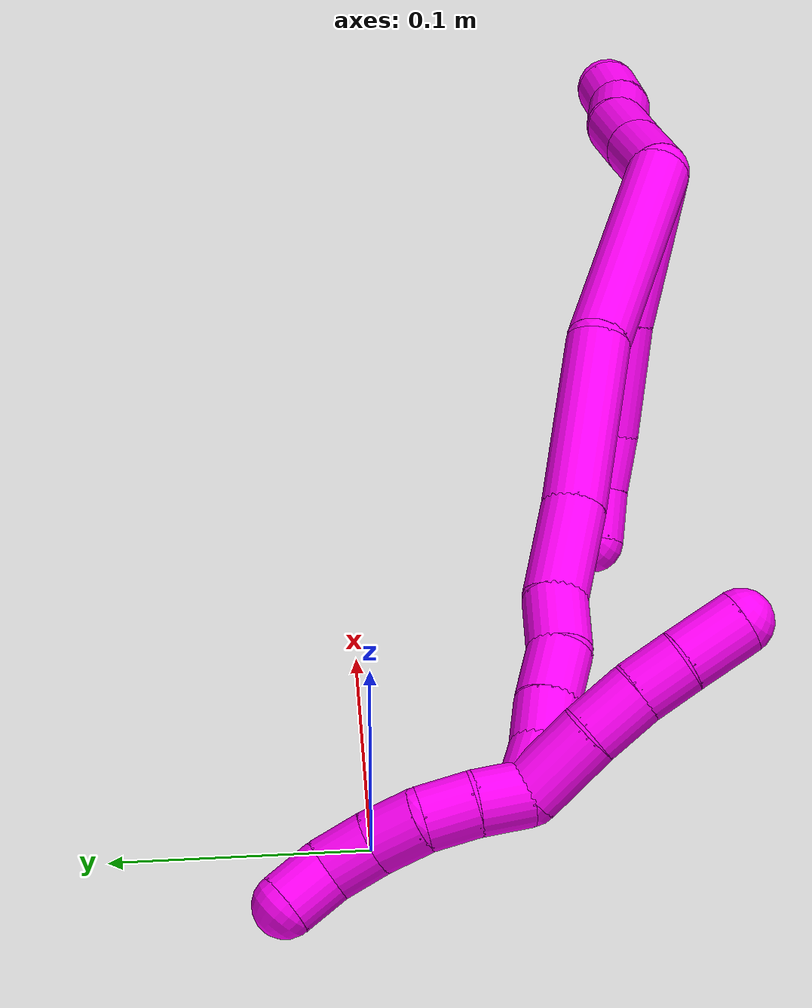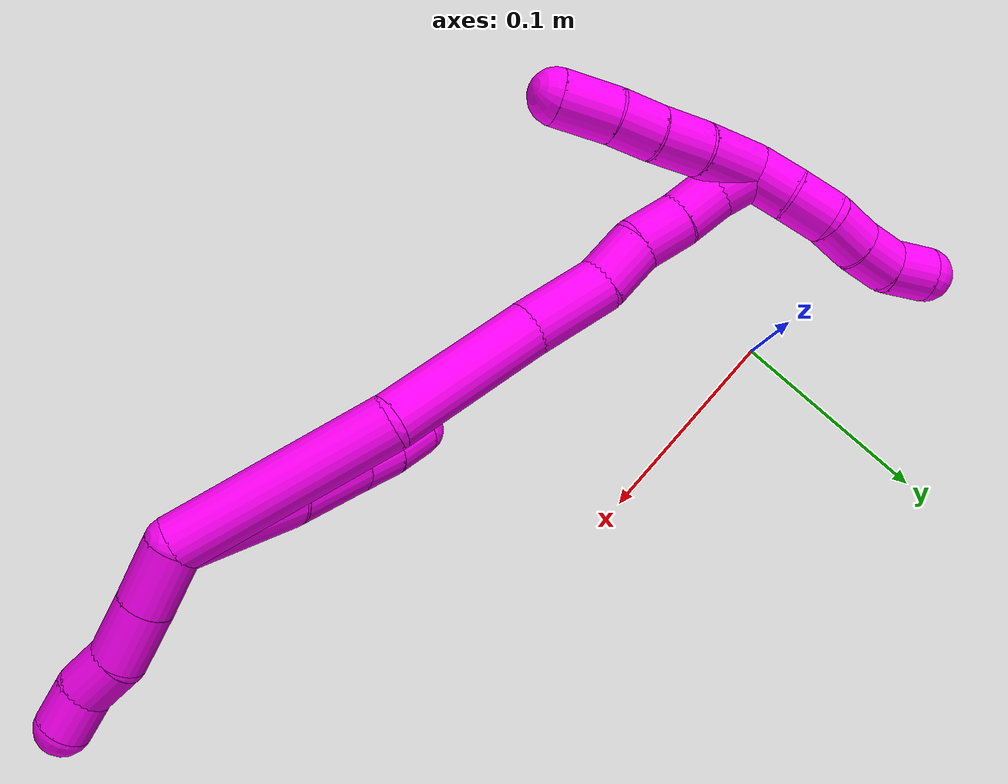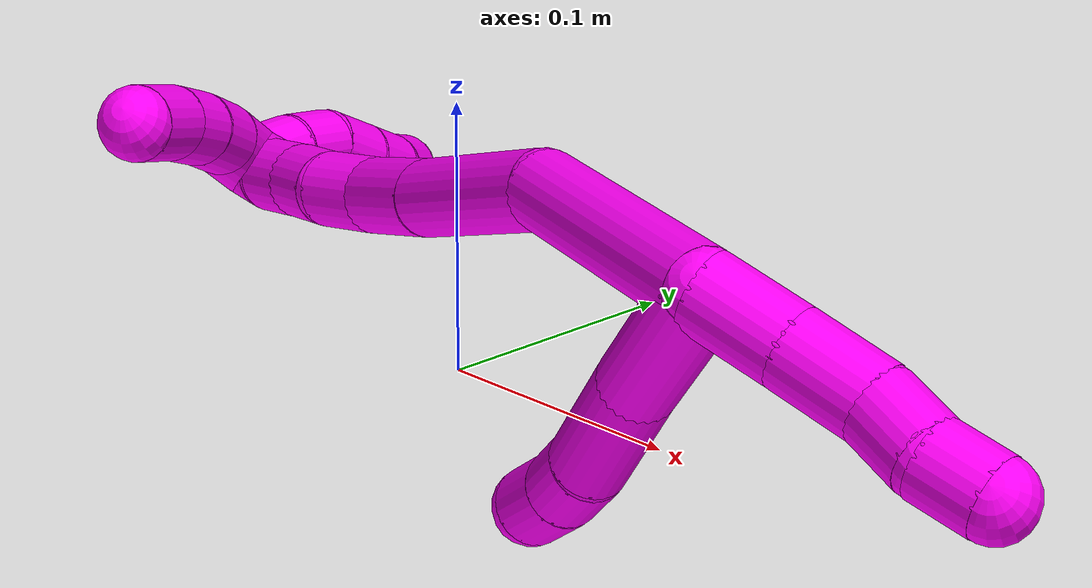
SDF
<sdf version="1.7">
 <world name="default">
  <model name="10">
   <static>0</static>
   <link name="10">
    <collision name="collision-cylinder-e_1_2_8">
     <pose>-0.010807 -0.010224 -0.026932 2.77879 -0.358895 -1.55974</pose>
     <geometry><cylinder><radius>0.0125</radius><length>0.061535</length></cylinder></geometry>
     <surface>
      <friction><ode><mu>1.16</mu><mu2>1.16</mu2><slip1>0</slip1><slip2>0</slip2></ode></friction>
      <contact><ode><kp>1e+06</kp><kd>1</kd><max_vel>0</max_vel><min_depth>0.001</min_depth></ode></contact>
     </surface>
    </collision>
    <visual name="visual-cylinder-e_1_2_8">
     <pose>-0.010807 -0.010224 -0.026932 2.77879 -0.358895 -1.55974</pose>
     <geometry><cylinder><radius>0.0125</radius><length>0.061535</length></cylinder></geometry>
     <material><ambient>1 0 0.964706 1</ambient></material>
    </visual>
    <collision name="collision-cylinder-e_2_8_9">
     <pose>-0.028747 -0.03082 -0.072453 2.63263 -0.323325 -1.12001</pose>
     <geometry><cylinder><radius>0.0125</radius><length>0.044901</length></cylinder></geometry>
     <surface>
      <friction><ode><mu>1.16</mu><mu2>1.16</mu2><slip1>0</slip1><slip2>0</slip2></ode></friction>
      <contact><ode><kp>1e+06</kp><kd>1</kd><max_vel>0</max_vel><min_depth>0.001</min_depth></ode></contact>
     </surface>
    </collision>
    <visual name="visual-cylinder-e_2_8_9">
     <pose>-0.028747 -0.03082 -0.072453 2.63263 -0.323325 -1.12001</pose>
     <geometry><cylinder><radius>0.0125</radius><length>0.044901</length></cylinder></geometry>
     <material><ambient>1 0 0.964706 1</ambient></material>
    </visual>
    <collision name="collision-cylinder-e_3_9_10">
     <pose>-0.040644 -0.044956 -0.100501 2.76289 -0.437733 -1.7192</pose>
     <geometry><cylinder><radius>0.0125</radius><length>0.022481</length></cylinder></geometry>
     <surface>
      <friction><ode><mu>1.16</mu><mu2>1.16</mu2><slip1>0</slip1><slip2>0</slip2></ode></friction>
      <contact><ode><kp>1e+06</kp><kd>1</kd><max_vel>0</max_vel><min_depth>0.001</min_depth></ode></contact>
     </surface>
    </collision>
    <visual name="visual-cylinder-e_3_9_10">
     <pose>-0.040644 -0.044956 -0.100501 2.76289 -0.437733 -1.7192</pose>
     <geometry><cylinder><radius>0.0125</radius><length>0.022481</length></cylinder></geometry>
     <material><ambient>1 0 0.964706 1</ambient></material>
    </visual>
    <collision name="collision-cylinder-e_4_10_6">
     <pose>-0.051292 -0.052109 -0.118025 2.74383 -0.592049 -1.97368</pose>
     <geometry><cylinder><radius>0.0125</radius><length>0.021083</length></cylinder></geometry>
     <surface>
      <friction><ode><mu>1.16</mu><mu2>1.16</mu2><slip1>0</slip1><slip2>0</slip2></ode></friction>
      <contact><ode><kp>1e+06</kp><kd>1</kd><max_vel>0</max_vel><min_depth>0.001</min_depth></ode></contact>
     </surface>
    </collision>
    <visual name="visual-cylinder-e_4_10_6">
     <pose>-0.051292 -0.052109 -0.118025 2.74383 -0.592049 -1.97368</pose>
     <geometry><cylinder><radius>0.0125</radius><length>0.021083</length></cylinder></geometry>
     <material><ambient>1 0 0.964706 1</ambient></material>
    </visual>
    <collision name="collision-cylinder-e_1_2_11">
     <pose>0.014484 -0.002173 -8.8e-05 1.61138 1.42175 1.46201</pose>
     <geometry><cylinder><radius>0.0125</radius><length>0.029293</length></cylinder></geometry>
     <surface>
      <friction><ode><mu>1.16</mu><mu2>1.16</mu2><slip1>0</slip1><slip2>0</slip2></ode></friction>
      <contact><ode><kp>1e+06</kp><kd>1</kd><max_vel>0</max_vel><min_depth>0.001</min_depth></ode></contact>
     </surface>
    </collision>
    <visual name="visual-cylinder-e_1_2_11">
     <pose>0.014484 -0.002173 -8.8e-05 1.61138 1.42175 1.46201</pose>
     <geometry><cylinder><radius>0.0125</radius><length>0.029293</length></cylinder></geometry>
     <material><ambient>1 0 0.964706 1</ambient></material>
    </visual>
    <collision name="collision-cylinder-e_2_11_12">
     <pose>0.042985 -0.006652 -3.9e-05 1.51139 1.40745 1.34911</pose>
     <geometry><cylinder><radius>0.0125</radius><length>0.028413</length></cylinder></geometry>
     <surface>
      <friction><ode><mu>1.16</mu><mu2>1.16</mu2><slip1>0</slip1><slip2>0</slip2></ode></friction>
      <contact><ode><kp>1e+06</kp><kd>1</kd><max_vel>0</max_vel><min_depth>0.001</min_depth></ode></contact>
     </surface>
    </collision>
    <visual name="visual-cylinder-e_2_11_12">
     <pose>0.042985 -0.006652 -3.9e-05 1.51139 1.40745 1.34911</pose>
     <geometry><cylinder><radius>0.0125</radius><length>0.028413</length></cylinder></geometry>
     <material><ambient>1 0 0.964706 1</ambient></material>
    </visual>
    <collision name="collision-cylinder-e_3_12_13">
     <pose>0.066844 -0.013044 0.002537 1.03267 1.12047 0.684211</pose>
     <geometry><cylinder><radius>0.0125</radius><length>0.021863</length></cylinder></geometry>
     <surface>
      <friction><ode><mu>1.16</mu><mu2>1.16</mu2><slip1>0</slip1><slip2>0</slip2></ode></friction>
      <contact><ode><kp>1e+06</kp><kd>1</kd><max_vel>0</max_vel><min_depth>0.001</min_depth></ode></contact>
     </surface>
    </collision>
    <visual name="visual-cylinder-e_3_12_13">
     <pose>0.066844 -0.013044 0.002537 1.03267 1.12047 0.684211</pose>
     <geometry><cylinder><radius>0.0125</radius><length>0.021863</length></cylinder></geometry>
     <material><ambient>1 0 0.964706 1</ambient></material>
    </visual>
    <collision name="collision-cylinder-e_4_13_5">
     <pose>0.086765 -0.018564 0.005821 1.03773 1.40711 0.902301</pose>
     <geometry><cylinder><radius>0.0125</radius><length>0.020431</length></cylinder></geometry>
     <surface>
      <friction><ode><mu>1.16</mu><mu2>1.16</mu2><slip1>0</slip1><slip2>0</slip2></ode></friction>
      <contact><ode><kp>1e+06</kp><kd>1</kd><max_vel>0</max_vel><min_depth>0.001</min_depth></ode></contact>
     </surface>
    </collision>
    <visual name="visual-cylinder-e_4_13_5">
     <pose>0.086765 -0.018564 0.005821 1.03773 1.40711 0.902301</pose>
     <geometry><cylinder><radius>0.0125</radius><length>0.020431</length></cylinder></geometry>
     <material><ambient>1 0 0.964706 1</ambient></material>
    </visual>
    <collision name="collision-cylinder-e_1_2_14">
     <pose>-0.038604 0.010865 -0.029767 -2.79162 -0.883472 2.42608</pose>
     <geometry><cylinder><radius>0.0125</radius><length>0.099888</length></cylinder></geometry>
     <surface>
      <friction><ode><mu>1.16</mu><mu2>1.16</mu2><slip1>0</slip1><slip2>0</slip2></ode></friction>
      <contact><ode><kp>1e+06</kp><kd>1</kd><max_vel>0</max_vel><min_depth>0.001</min_depth></ode></contact>
     </surface>
    </collision>
    <visual name="visual-cylinder-e_1_2_14">
     <pose>-0.038604 0.010865 -0.029767 -2.79162 -0.883472 2.42608</pose>
     <geometry><cylinder><radius>0.0125</radius><length>0.099888</length></cylinder></geometry>
     <material><ambient>1 0 0.964706 1</ambient></material>
    </visual>
    <collision name="collision-cylinder-e_2_14_15">
     <pose>-0.1035 0.018872 -0.084513 3.02769 -0.807751 -2.87634</pose>
     <geometry><cylinder><radius>0.0125</radius><length>0.072755</length></cylinder></geometry>
     <surface>
      <friction><ode><mu>1.16</mu><mu2>1.16</mu2><slip1>0</slip1><slip2>0</slip2></ode></friction>
      <contact><ode><kp>1e+06</kp><kd>1</kd><max_vel>0</max_vel><min_depth>0.001</min_depth></ode></contact>
     </surface>
    </collision>
    <visual name="visual-cylinder-e_2_14_15">
     <pose>-0.1035 0.018872 -0.084513 3.02769 -0.807751 -2.87634</pose>
     <geometry><cylinder><radius>0.0125</radius><length>0.072755</length></cylinder></geometry>
     <material><ambient>1 0 0.964706 1</ambient></material>
    </visual>
    <collision name="collision-cylinder-e_3_15_16">
     <pose>-0.14399 0.015759 -0.12303 3.12273 -0.809115 -3.09755</pose>
     <geometry><cylinder><radius>0.0125</radius><length>0.039241</length></cylinder></geometry>
     <surface>
      <friction><ode><mu>1.16</mu><mu2>1.16</mu2><slip1>0</slip1><slip2>0</slip2></ode></friction>
      <contact><ode><kp>1e+06</kp><kd>1</kd><max_vel>0</max_vel><min_depth>0.001</min_depth></ode></contact>
     </surface>
    </collision>
    <visual name="visual-cylinder-e_3_15_16">
     <pose>-0.14399 0.015759 -0.12303 3.12273 -0.809115 -3.09755</pose>
     <geometry><cylinder><radius>0.0125</radius><length>0.039241</length></cylinder></geometry>
     <material><ambient>1 0 0.964706 1</ambient></material>
    </visual>
    <collision name="collision-cylinder-e_4_16_17">
     <pose>-0.168737 0.014435 -0.142261 2.95602 -1.06866 -2.82964</pose>
     <geometry><cylinder><radius>0.0125</radius><length>0.024068</length></cylinder></geometry>
     <surface>
      <friction><ode><mu>1.16</mu><mu2>1.16</mu2><slip1>0</slip1><slip2>0</slip2></ode></friction>
      <contact><ode><kp>1e+06</kp><kd>1</kd><max_vel>0</max_vel><min_depth>0.001</min_depth></ode></contact>
     </surface>
    </collision>
    <visual name="visual-cylinder-e_4_16_17">
     <pose>-0.168737 0.014435 -0.142261 2.95602 -1.06866 -2.82964</pose>
     <geometry><cylinder><radius>0.0125</radius><length>0.024068</length></cylinder></geometry>
     <material><ambient>1 0 0.964706 1</ambient></material>
    </visual>
    <collision name="collision-cylinder-e_5_17_18">
     <pose>-0.187961 0.014217 -0.155514 -3.02962 -0.850887 2.89547</pose>
     <geometry><cylinder><radius>0.0125</radius><length>0.023078</length></cylinder></geometry>
     <surface>
      <friction><ode><mu>1.16</mu><mu2>1.16</mu2><slip1>0</slip1><slip2>0</slip2></ode></friction>
      <contact><ode><kp>1e+06</kp><kd>1</kd><max_vel>0</max_vel><min_depth>0.001</min_depth></ode></contact>
     </surface>
    </collision>
    <visual name="visual-cylinder-e_5_17_18">
     <pose>-0.187961 0.014217 -0.155514 -3.02962 -0.850887 2.89547</pose>
     <geometry><cylinder><radius>0.0125</radius><length>0.023078</length></cylinder></geometry>
     <material><ambient>1 0 0.964706 1</ambient></material>
    </visual>
    <collision name="collision-cylinder-e_6_18_19">
     <pose>-0.204963 0.015156 -0.169104 -3.1268 -0.94392 3.11262</pose>
     <geometry><cylinder><radius>0.0125</radius><length>0.020562</length></cylinder></geometry>
     <surface>
      <friction><ode><mu>1.16</mu><mu2>1.16</mu2><slip1>0</slip1><slip2>0</slip2></ode></friction>
      <contact><ode><kp>1e+06</kp><kd>1</kd><max_vel>0</max_vel><min_depth>0.001</min_depth></ode></contact>
     </surface>
    </collision>
    <visual name="visual-cylinder-e_6_18_19">
     <pose>-0.204963 0.015156 -0.169104 -3.1268 -0.94392 3.11262</pose>
     <geometry><cylinder><radius>0.0125</radius><length>0.020562</length></cylinder></geometry>
     <material><ambient>1 0 0.964706 1</ambient></material>
    </visual>
    <collision name="collision-cylinder-e_7_19_1">
     <pose>-0.221072 0.016949 -0.181511 -2.88042 -0.867387 2.5889</pose>
     <geometry><cylinder><radius>0.0125</radius><length>0.020408</length></cylinder></geometry>
     <surface>
      <friction><ode><mu>1.16</mu><mu2>1.16</mu2><slip1>0</slip1><slip2>0</slip2></ode></friction>
      <contact><ode><kp>1e+06</kp><kd>1</kd><max_vel>0</max_vel><min_depth>0.001</min_depth></ode></contact>
     </surface>
    </collision>
    <visual name="visual-cylinder-e_7_19_1">
     <pose>-0.221072 0.016949 -0.181511 -2.88042 -0.867387 2.5889</pose>
     <geometry><cylinder><radius>0.0125</radius><length>0.020408</length></cylinder></geometry>
     <material><ambient>1 0 0.964706 1</ambient></material>
    </visual>
    <collision name="collision-cylinder-e_1_1_20">
     <pose>-0.227472 0.025067 -0.195434 -2.43718 0.138584 -0.373278</pose>
     <geometry><cylinder><radius>0.0125</radius><length>0.02</length></cylinder></geometry>
     <surface>
      <friction><ode><mu>1.16</mu><mu2>1.16</mu2><slip1>0</slip1><slip2>0</slip2></ode></friction>
      <contact><ode><kp>1e+06</kp><kd>1</kd><max_vel>0</max_vel><min_depth>0.001</min_depth></ode></contact>
     </surface>
    </collision>
    <visual name="visual-cylinder-e_1_1_20">
     <pose>-0.227472 0.025067 -0.195434 -2.43718 0.138584 -0.373278</pose>
     <geometry><cylinder><radius>0.0125</radius><length>0.02</length></cylinder></geometry>
     <material><ambient>1 0 0.964706 1</ambient></material>
    </visual>
    <collision name="collision-cylinder-e_2_20_21">
     <pose>-0.224563 0.036788 -0.211317 -2.57467 0.153394 -0.515856</pose>
     <geometry><cylinder><radius>0.0125</radius><length>0.02</length></cylinder></geometry>
     <surface>
      <friction><ode><mu>1.16</mu><mu2>1.16</mu2><slip1>0</slip1><slip2>0</slip2></ode></friction>
      <contact><ode><kp>1e+06</kp><kd>1</kd><max_vel>0</max_vel><min_depth>0.001</min_depth></ode></contact>
     </surface>
    </collision>
    <visual name="visual-cylinder-e_2_20_21">
     <pose>-0.224563 0.036788 -0.211317 -2.57467 0.153394 -0.515856</pose>
     <geometry><cylinder><radius>0.0125</radius><length>0.02</length></cylinder></geometry>
     <material><ambient>1 0 0.964706 1</ambient></material>
    </visual>
    <collision name="collision-cylinder-e_3_21_22">
     <pose>-0.220236 0.044567 -0.228931 -2.88125 0.283674 -1.65758</pose>
     <geometry><cylinder><radius>0.0125</radius><length>0.02</length></cylinder></geometry>
     <surface>
      <friction><ode><mu>1.16</mu><mu2>1.16</mu2><slip1>0</slip1><slip2>0</slip2></ode></friction>
      <contact><ode><kp>1e+06</kp><kd>1</kd><max_vel>0</max_vel><min_depth>0.001</min_depth></ode></contact>
     </surface>
    </collision>
    <visual name="visual-cylinder-e_3_21_22">
     <pose>-0.220236 0.044567 -0.228931 -2.88125 0.283674 -1.65758</pose>
     <geometry><cylinder><radius>0.0125</radius><length>0.02</length></cylinder></geometry>
     <material><ambient>1 0 0.964706 1</ambient></material>
    </visual>
    <collision name="collision-cylinder-e_4_22_23">
     <pose>-0.215839 0.049475 -0.247774 -2.89214 0.16045 -1.14041</pose>
     <geometry><cylinder><radius>0.0125</radius><length>0.02</length></cylinder></geometry>
     <surface>
      <friction><ode><mu>1.16</mu><mu2>1.16</mu2><slip1>0</slip1><slip2>0</slip2></ode></friction>
      <contact><ode><kp>1e+06</kp><kd>1</kd><max_vel>0</max_vel><min_depth>0.001</min_depth></ode></contact>
     </surface>
    </collision>
    <visual name="visual-cylinder-e_4_22_23">
     <pose>-0.215839 0.049475 -0.247774 -2.89214 0.16045 -1.14041</pose>
     <geometry><cylinder><radius>0.0125</radius><length>0.02</length></cylinder></geometry>
     <material><ambient>1 0 0.964706 1</ambient></material>
    </visual>
    <collision name="collision-cylinder-e_5_23_4">
     <pose>-0.215884 0.055018 -0.266702 -2.82132 -0.164952 0.946066</pose>
     <geometry><cylinder><radius>0.0125</radius><length>0.02</length></cylinder></geometry>
     <surface>
      <friction><ode><mu>1.16</mu><mu2>1.16</mu2><slip1>0</slip1><slip2>0</slip2></ode></friction>
      <contact><ode><kp>1e+06</kp><kd>1</kd><max_vel>0</max_vel><min_depth>0.001</min_depth></ode></contact>
     </surface>
    </collision>
    <visual name="visual-cylinder-e_5_23_4">
     <pose>-0.215884 0.055018 -0.266702 -2.82132 -0.164952 0.946066</pose>
     <geometry><cylinder><radius>0.0125</radius><length>0.02</length></cylinder></geometry>
     <material><ambient>1 0 0.964706 1</ambient></material>
    </visual>
    <collision name="collision-cylinder-e_1_1_24">
     <pose>-0.228433 0.017165 -0.172627 0.097205 0.027441 0.001335</pose>
     <geometry><cylinder><radius>0.0125</radius><length>0.030677</length></cylinder></geometry>
     <surface>
      <friction><ode><mu>1.16</mu><mu2>1.16</mu2><slip1>0</slip1><slip2>0</slip2></ode></friction>
      <contact><ode><kp>1e+06</kp><kd>1</kd><max_vel>0</max_vel><min_depth>0.001</min_depth></ode></contact>
     </surface>
    </collision>
    <visual name="visual-cylinder-e_1_1_24">
     <pose>-0.228433 0.017165 -0.172627 0.097205 0.027441 0.001335</pose>
     <geometry><cylinder><radius>0.0125</radius><length>0.030677</length></cylinder></geometry>
     <material><ambient>1 0 0.964706 1</ambient></material>
    </visual>
    <collision name="collision-cylinder-e_2_24_25">
     <pose>-0.227148 0.013243 -0.146151 0.21371 0.075127 0.008062</pose>
     <geometry><cylinder><radius>0.0125</radius><length>0.023018</length></cylinder></geometry>
     <surface>
      <friction><ode><mu>1.16</mu><mu2>1.16</mu2><slip1>0</slip1><slip2>0</slip2></ode></friction>
      <contact><ode><kp>1e+06</kp><kd>1</kd><max_vel>0</max_vel><min_depth>0.001</min_depth></ode></contact>
     </surface>
    </collision>
    <visual name="visual-cylinder-e_2_24_25">
     <pose>-0.227148 0.013243 -0.146151 0.21371 0.075127 0.008062</pose>
     <geometry><cylinder><radius>0.0125</radius><length>0.023018</length></cylinder></geometry>
     <material><ambient>1 0 0.964706 1</ambient></material>
    </visual>
    <collision name="collision-cylinder-e_3_25_26">
     <pose>-0.226102 0.007846 -0.125378 0.300612 0.018197 0.002756</pose>
     <geometry><cylinder><radius>0.0125</radius><length>0.020017</length></cylinder></geometry>
     <surface>
      <friction><ode><mu>1.16</mu><mu2>1.16</mu2><slip1>0</slip1><slip2>0</slip2></ode></friction>
      <contact><ode><kp>1e+06</kp><kd>1</kd><max_vel>0</max_vel><min_depth>0.001</min_depth></ode></contact>
     </surface>
    </collision>
    <visual name="visual-cylinder-e_3_25_26">
     <pose>-0.226102 0.007846 -0.125378 0.300612 0.018197 0.002756</pose>
     <geometry><cylinder><radius>0.0125</radius><length>0.020017</length></cylinder></geometry>
     <material><ambient>1 0 0.964706 1</ambient></material>
    </visual>
    <collision name="collision-cylinder-e_4_26_3">
     <pose>-0.224708 1.1e-05 -0.103672 0.38147 0.092325 0.017839</pose>
     <geometry><cylinder><radius>0.0125</radius><length>0.026288</length></cylinder></geometry>
     <surface>
      <friction><ode><mu>1.16</mu><mu2>1.16</mu2><slip1>0</slip1><slip2>0</slip2></ode></friction>
      <contact><ode><kp>1e+06</kp><kd>1</kd><max_vel>0</max_vel><min_depth>0.001</min_depth></ode></contact>
     </surface>
    </collision>
    <visual name="visual-cylinder-e_4_26_3">
     <pose>-0.224708 1.1e-05 -0.103672 0.38147 0.092325 0.017839</pose>
     <geometry><cylinder><radius>0.0125</radius><length>0.026288</length></cylinder></geometry>
     <material><ambient>1 0 0.964706 1</ambient></material>
    </visual>
    <collision name="collision-sphere-3">
     <pose>-0.223496 -0.004862 -0.091525 0 -0 0</pose>
     <geometry><sphere><radius>0.0125</radius></sphere></geometry>
     <surface>
      <friction><ode><mu>1.16</mu><mu2>1.16</mu2><slip1>0</slip1><slip2>0</slip2></ode></friction>
      <contact><ode><kp>1e+06</kp><kd>1</kd><max_vel>0</max_vel><min_depth>0.001</min_depth></ode></contact>
     </surface>
    </collision>
    <visual name="visual-sphere-3">
     <pose>-0.223496 -0.004862 -0.091525 0 -0 0</pose>
     <geometry><sphere><radius>0.0125</radius></sphere></geometry>
     <material><ambient>1 0 0.964706 1</ambient></material>
    </visual>
    <collision name="collision-sphere-26">
     <pose>-0.22592 0.004883 -0.115819 0 -0 0</pose>
     <geometry><sphere><radius>0.0125</radius></sphere></geometry>
     <surface>
      <friction><ode><mu>1.16</mu><mu2>1.16</mu2><slip1>0</slip1><slip2>0</slip2></ode></friction>
      <contact><ode><kp>1e+06</kp><kd>1</kd><max_vel>0</max_vel><min_depth>0.001</min_depth></ode></contact>
     </surface>
    </collision>
    <visual name="visual-sphere-26">
     <pose>-0.22592 0.004883 -0.115819 0 -0 0</pose>
     <geometry><sphere><radius>0.0125</radius></sphere></geometry>
     <material><ambient>1 0 0.964706 1</ambient></material>
    </visual>
    <collision name="collision-sphere-25">
     <pose>-0.226284 0.010809 -0.134936 0 -0 0</pose>
     <geometry><sphere><radius>0.0125</radius></sphere></geometry>
     <surface>
      <friction><ode><mu>1.16</mu><mu2>1.16</mu2><slip1>0</slip1><slip2>0</slip2></ode></friction>
      <contact><ode><kp>1e+06</kp><kd>1</kd><max_vel>0</max_vel><min_depth>0.001</min_depth></ode></contact>
     </surface>
    </collision>
    <visual name="visual-sphere-25">
     <pose>-0.226284 0.010809 -0.134936 0 -0 0</pose>
     <geometry><sphere><radius>0.0125</radius></sphere></geometry>
     <material><ambient>1 0 0.964706 1</ambient></material>
    </visual>
    <collision name="collision-sphere-24">
     <pose>-0.228012 0.015677 -0.157366 0 -0 0</pose>
     <geometry><sphere><radius>0.0125</radius></sphere></geometry>
     <surface>
      <friction><ode><mu>1.16</mu><mu2>1.16</mu2><slip1>0</slip1><slip2>0</slip2></ode></friction>
      <contact><ode><kp>1e+06</kp><kd>1</kd><max_vel>0</max_vel><min_depth>0.001</min_depth></ode></contact>
     </surface>
    </collision>
    <visual name="visual-sphere-24">
     <pose>-0.228012 0.015677 -0.157366 0 -0 0</pose>
     <geometry><sphere><radius>0.0125</radius></sphere></geometry>
     <material><ambient>1 0 0.964706 1</ambient></material>
    </visual>
    <collision name="collision-sphere-4">
     <pose>-0.217526 0.058123 -0.276065 0 -0 0</pose>
     <geometry><sphere><radius>0.0125</radius></sphere></geometry>
     <surface>
      <friction><ode><mu>1.16</mu><mu2>1.16</mu2><slip1>0</slip1><slip2>0</slip2></ode></friction>
      <contact><ode><kp>1e+06</kp><kd>1</kd><max_vel>0</max_vel><min_depth>0.001</min_depth></ode></contact>
     </surface>
    </collision>
    <visual name="visual-sphere-4">
     <pose>-0.217526 0.058123 -0.276065 0 -0 0</pose>
     <geometry><sphere><radius>0.0125</radius></sphere></geometry>
     <material><ambient>1 0 0.964706 1</ambient></material>
    </visual>
    <collision name="collision-sphere-23">
     <pose>-0.214242 0.051912 -0.25734 0 -0 0</pose>
     <geometry><sphere><radius>0.0125</radius></sphere></geometry>
     <surface>
      <friction><ode><mu>1.16</mu><mu2>1.16</mu2><slip1>0</slip1><slip2>0</slip2></ode></friction>
      <contact><ode><kp>1e+06</kp><kd>1</kd><max_vel>0</max_vel><min_depth>0.001</min_depth></ode></contact>
     </surface>
    </collision>
    <visual name="visual-sphere-23">
     <pose>-0.214242 0.051912 -0.25734 0 -0 0</pose>
     <geometry><sphere><radius>0.0125</radius></sphere></geometry>
     <material><ambient>1 0 0.964706 1</ambient></material>
    </visual>
    <collision name="collision-sphere-22">
     <pose>-0.217437 0.047038 -0.238208 0 -0 0</pose>
     <geometry><sphere><radius>0.0125</radius></sphere></geometry>
     <surface>
      <friction><ode><mu>1.16</mu><mu2>1.16</mu2><slip1>0</slip1><slip2>0</slip2></ode></friction>
      <contact><ode><kp>1e+06</kp><kd>1</kd><max_vel>0</max_vel><min_depth>0.001</min_depth></ode></contact>
     </surface>
    </collision>
    <visual name="visual-sphere-22">
     <pose>-0.217437 0.047038 -0.238208 0 -0 0</pose>
     <geometry><sphere><radius>0.0125</radius></sphere></geometry>
     <material><ambient>1 0 0.964706 1</ambient></material>
    </visual>
    <collision name="collision-sphere-21">
     <pose>-0.223035 0.042096 -0.219654 0 -0 0</pose>
     <geometry><sphere><radius>0.0125</radius></sphere></geometry>
     <surface>
      <friction><ode><mu>1.16</mu><mu2>1.16</mu2><slip1>0</slip1><slip2>0</slip2></ode></friction>
      <contact><ode><kp>1e+06</kp><kd>1</kd><max_vel>0</max_vel><min_depth>0.001</min_depth></ode></contact>
     </surface>
    </collision>
    <visual name="visual-sphere-21">
     <pose>-0.223035 0.042096 -0.219654 0 -0 0</pose>
     <geometry><sphere><radius>0.0125</radius></sphere></geometry>
     <material><ambient>1 0 0.964706 1</ambient></material>
    </visual>
    <collision name="collision-sphere-20">
     <pose>-0.226091 0.031481 -0.202981 0 -0 0</pose>
     <geometry><sphere><radius>0.0125</radius></sphere></geometry>
     <surface>
      <friction><ode><mu>1.16</mu><mu2>1.16</mu2><slip1>0</slip1><slip2>0</slip2></ode></friction>
      <contact><ode><kp>1e+06</kp><kd>1</kd><max_vel>0</max_vel><min_depth>0.001</min_depth></ode></contact>
     </surface>
    </collision>
    <visual name="visual-sphere-20">
     <pose>-0.226091 0.031481 -0.202981 0 -0 0</pose>
     <geometry><sphere><radius>0.0125</radius></sphere></geometry>
     <material><ambient>1 0 0.964706 1</ambient></material>
    </visual>
    <collision name="collision-sphere-11">
     <pose>0.028968 -0.004346 -0.000176 0 -0 0</pose>
     <geometry><sphere><radius>0.0125</radius></sphere></geometry>
     <surface>
      <friction><ode><mu>1.16</mu><mu2>1.16</mu2><slip1>0</slip1><slip2>0</slip2></ode></friction>
      <contact><ode><kp>1e+06</kp><kd>1</kd><max_vel>0</max_vel><min_depth>0.001</min_depth></ode></contact>
     </surface>
    </collision>
    <visual name="visual-sphere-11">
     <pose>0.028968 -0.004346 -0.000176 0 -0 0</pose>
     <geometry><sphere><radius>0.0125</radius></sphere></geometry>
     <material><ambient>1 0 0.964706 1</ambient></material>
    </visual>
    <collision name="collision-sphere-6">
     <pose>-0.057175 -0.055497 -0.12609 0 -0 0</pose>
     <geometry><sphere><radius>0.0125</radius></sphere></geometry>
     <surface>
      <friction><ode><mu>1.16</mu><mu2>1.16</mu2><slip1>0</slip1><slip2>0</slip2></ode></friction>
      <contact><ode><kp>1e+06</kp><kd>1</kd><max_vel>0</max_vel><min_depth>0.001</min_depth></ode></contact>
     </surface>
    </collision>
    <visual name="visual-sphere-6">
     <pose>-0.057175 -0.055497 -0.12609 0 -0 0</pose>
     <geometry><sphere><radius>0.0125</radius></sphere></geometry>
     <material><ambient>1 0 0.964706 1</ambient></material>
    </visual>
    <collision name="collision-sphere-10">
     <pose>-0.045409 -0.04872 -0.109961 0 -0 0</pose>
     <geometry><sphere><radius>0.0125</radius></sphere></geometry>
     <surface>
      <friction><ode><mu>1.16</mu><mu2>1.16</mu2><slip1>0</slip1><slip2>0</slip2></ode></friction>
      <contact><ode><kp>1e+06</kp><kd>1</kd><max_vel>0</max_vel><min_depth>0.001</min_depth></ode></contact>
     </surface>
    </collision>
    <visual name="visual-sphere-10">
     <pose>-0.045409 -0.04872 -0.109961 0 -0 0</pose>
     <geometry><sphere><radius>0.0125</radius></sphere></geometry>
     <material><ambient>1 0 0.964706 1</ambient></material>
    </visual>
    <collision name="collision-sphere-9">
     <pose>-0.035879 -0.041192 -0.091042 0 -0 0</pose>
     <geometry><sphere><radius>0.0125</radius></sphere></geometry>
     <surface>
      <friction><ode><mu>1.16</mu><mu2>1.16</mu2><slip1>0</slip1><slip2>0</slip2></ode></friction>
      <contact><ode><kp>1e+06</kp><kd>1</kd><max_vel>0</max_vel><min_depth>0.001</min_depth></ode></contact>
     </surface>
    </collision>
    <visual name="visual-sphere-9">
     <pose>-0.035879 -0.041192 -0.091042 0 -0 0</pose>
     <geometry><sphere><radius>0.0125</radius></sphere></geometry>
     <material><ambient>1 0 0.964706 1</ambient></material>
    </visual>
    <collision name="collision-sphere-2">
     <geometry><sphere><radius>0.0125</radius></sphere></geometry>
     <surface>
      <friction><ode><mu>1.16</mu><mu2>1.16</mu2><slip1>0</slip1><slip2>0</slip2></ode></friction>
      <contact><ode><kp>1e+06</kp><kd>1</kd><max_vel>0</max_vel><min_depth>0.001</min_depth></ode></contact>
     </surface>
    </collision>
    <visual name="visual-sphere-2">
     <geometry><sphere><radius>0.0125</radius></sphere></geometry>
     <material><ambient>1 0 0.964706 1</ambient></material>
    </visual>
    <collision name="collision-sphere-19">
     <pose>-0.21329 0.015245 -0.175135 0 -0 0</pose>
     <geometry><sphere><radius>0.0125</radius></sphere></geometry>
     <surface>
      <friction><ode><mu>1.16</mu><mu2>1.16</mu2><slip1>0</slip1><slip2>0</slip2></ode></friction>
      <contact><ode><kp>1e+06</kp><kd>1</kd><max_vel>0</max_vel><min_depth>0.001</min_depth></ode></contact>
     </surface>
    </collision>
    <visual name="visual-sphere-19">
     <pose>-0.21329 0.015245 -0.175135 0 -0 0</pose>
     <geometry><sphere><radius>0.0125</radius></sphere></geometry>
     <material><ambient>1 0 0.964706 1</ambient></material>
    </visual>
    <collision name="collision-sphere-8">
     <pose>-0.021614 -0.020447 -0.053864 0 -0 0</pose>
     <geometry><sphere><radius>0.0125</radius></sphere></geometry>
     <surface>
      <friction><ode><mu>1.16</mu><mu2>1.16</mu2><slip1>0</slip1><slip2>0</slip2></ode></friction>
      <contact><ode><kp>1e+06</kp><kd>1</kd><max_vel>0</max_vel><min_depth>0.001</min_depth></ode></contact>
     </surface>
    </collision>
    <visual name="visual-sphere-8">
     <pose>-0.021614 -0.020447 -0.053864 0 -0 0</pose>
     <geometry><sphere><radius>0.0125</radius></sphere></geometry>
     <material><ambient>1 0 0.964706 1</ambient></material>
    </visual>
    <collision name="collision-sphere-12">
     <pose>0.057003 -0.008959 9.8e-05 0 -0 0</pose>
     <geometry><sphere><radius>0.0125</radius></sphere></geometry>
     <surface>
      <friction><ode><mu>1.16</mu><mu2>1.16</mu2><slip1>0</slip1><slip2>0</slip2></ode></friction>
      <contact><ode><kp>1e+06</kp><kd>1</kd><max_vel>0</max_vel><min_depth>0.001</min_depth></ode></contact>
     </surface>
    </collision>
    <visual name="visual-sphere-12">
     <pose>0.057003 -0.008959 9.8e-05 0 -0 0</pose>
     <geometry><sphere><radius>0.0125</radius></sphere></geometry>
     <material><ambient>1 0 0.964706 1</ambient></material>
    </visual>
    <collision name="collision-sphere-13">
     <pose>0.076686 -0.01713 0.004975 0 -0 0</pose>
     <geometry><sphere><radius>0.0125</radius></sphere></geometry>
     <surface>
      <friction><ode><mu>1.16</mu><mu2>1.16</mu2><slip1>0</slip1><slip2>0</slip2></ode></friction>
      <contact><ode><kp>1e+06</kp><kd>1</kd><max_vel>0</max_vel><min_depth>0.001</min_depth></ode></contact>
     </surface>
    </collision>
    <visual name="visual-sphere-13">
     <pose>0.076686 -0.01713 0.004975 0 -0 0</pose>
     <geometry><sphere><radius>0.0125</radius></sphere></geometry>
     <material><ambient>1 0 0.964706 1</ambient></material>
    </visual>
    <collision name="collision-sphere-5">
     <pose>0.096844 -0.019997 0.006667 0 -0 0</pose>
     <geometry><sphere><radius>0.0125</radius></sphere></geometry>
     <surface>
      <friction><ode><mu>1.16</mu><mu2>1.16</mu2><slip1>0</slip1><slip2>0</slip2></ode></friction>
      <contact><ode><kp>1e+06</kp><kd>1</kd><max_vel>0</max_vel><min_depth>0.001</min_depth></ode></contact>
     </surface>
    </collision>
    <visual name="visual-sphere-5">
     <pose>0.096844 -0.019997 0.006667 0 -0 0</pose>
     <geometry><sphere><radius>0.0125</radius></sphere></geometry>
     <material><ambient>1 0 0.964706 1</ambient></material>
    </visual>
    <collision name="collision-sphere-14">
     <pose>-0.077208 0.02173 -0.059535 0 -0 0</pose>
     <geometry><sphere><radius>0.0125</radius></sphere></geometry>
     <surface>
      <friction><ode><mu>1.16</mu><mu2>1.16</mu2><slip1>0</slip1><slip2>0</slip2></ode></friction>
      <contact><ode><kp>1e+06</kp><kd>1</kd><max_vel>0</max_vel><min_depth>0.001</min_depth></ode></contact>
     </surface>
    </collision>
    <visual name="visual-sphere-14">
     <pose>-0.077208 0.02173 -0.059535 0 -0 0</pose>
     <geometry><sphere><radius>0.0125</radius></sphere></geometry>
     <material><ambient>1 0 0.964706 1</ambient></material>
    </visual>
    <collision name="collision-sphere-15">
     <pose>-0.129791 0.016015 -0.109492 0 -0 0</pose>
     <geometry><sphere><radius>0.0125</radius></sphere></geometry>
     <surface>
      <friction><ode><mu>1.16</mu><mu2>1.16</mu2><slip1>0</slip1><slip2>0</slip2></ode></friction>
      <contact><ode><kp>1e+06</kp><kd>1</kd><max_vel>0</max_vel><min_depth>0.001</min_depth></ode></contact>
     </surface>
    </collision>
    <visual name="visual-sphere-15">
     <pose>-0.129791 0.016015 -0.109492 0 -0 0</pose>
     <geometry><sphere><radius>0.0125</radius></sphere></geometry>
     <material><ambient>1 0 0.964706 1</ambient></material>
    </visual>
    <collision name="collision-sphere-16">
     <pose>-0.158188 0.015504 -0.136568 0 -0 0</pose>
     <geometry><sphere><radius>0.0125</radius></sphere></geometry>
     <surface>
      <friction><ode><mu>1.16</mu><mu2>1.16</mu2><slip1>0</slip1><slip2>0</slip2></ode></friction>
      <contact><ode><kp>1e+06</kp><kd>1</kd><max_vel>0</max_vel><min_depth>0.001</min_depth></ode></contact>
     </surface>
    </collision>
    <visual name="visual-sphere-16">
     <pose>-0.158188 0.015504 -0.136568 0 -0 0</pose>
     <geometry><sphere><radius>0.0125</radius></sphere></geometry>
     <material><ambient>1 0 0.964706 1</ambient></material>
    </visual>
    <collision name="collision-sphere-17">
     <pose>-0.179285 0.013366 -0.147953 0 -0 0</pose>
     <geometry><sphere><radius>0.0125</radius></sphere></geometry>
     <surface>
      <friction><ode><mu>1.16</mu><mu2>1.16</mu2><slip1>0</slip1><slip2>0</slip2></ode></friction>
      <contact><ode><kp>1e+06</kp><kd>1</kd><max_vel>0</max_vel><min_depth>0.001</min_depth></ode></contact>
     </surface>
    </collision>
    <visual name="visual-sphere-17">
     <pose>-0.179285 0.013366 -0.147953 0 -0 0</pose>
     <geometry><sphere><radius>0.0125</radius></sphere></geometry>
     <material><ambient>1 0 0.964706 1</ambient></material>
    </visual>
    <collision name="collision-sphere-18">
     <pose>-0.196637 0.015067 -0.163074 0 -0 0</pose>
     <geometry><sphere><radius>0.0125</radius></sphere></geometry>
     <surface>
      <friction><ode><mu>1.16</mu><mu2>1.16</mu2><slip1>0</slip1><slip2>0</slip2></ode></friction>
      <contact><ode><kp>1e+06</kp><kd>1</kd><max_vel>0</max_vel><min_depth>0.001</min_depth></ode></contact>
     </surface>
    </collision>
    <visual name="visual-sphere-18">
     <pose>-0.196637 0.015067 -0.163074 0 -0 0</pose>
     <geometry><sphere><radius>0.0125</radius></sphere></geometry>
     <material><ambient>1 0 0.964706 1</ambient></material>
    </visual>
    <collision name="collision-sphere-1">
     <pose>-0.228853 0.018654 -0.187887 0 -0 0</pose>
     <geometry><sphere><radius>0.0125</radius></sphere></geometry>
     <surface>
      <friction><ode><mu>1.16</mu><mu2>1.16</mu2><slip1>0</slip1><slip2>0</slip2></ode></friction>
      <contact><ode><kp>1e+06</kp><kd>1</kd><max_vel>0</max_vel><min_depth>0.001</min_depth></ode></contact>
     </surface>
    </collision>
    <visual name="visual-sphere-1">
     <pose>-0.228853 0.018654 -0.187887 0 -0 0</pose>
     <geometry><sphere><radius>0.0125</radius></sphere></geometry>
     <material><ambient>1 0 0.964706 1</ambient></material>
    </visual>
    <inertial>
     <pose>-0.103975 0.006103 -0.099373 0 -0 0</pose>
     <mass>0.75</mass>
     <inertia>
      <ixx>-7.1e-05</ixx>
      <ixy>0</ixy>
      <ixz>0</ixz>
      <iyy>0.000136</iyy>
      <iyz>0</iyz>
      <izz>7.9e-05</izz>
     </inertia>
    </inertial>
   </link>
   <pose>0.237732 -0.129394 0.127653 0.877702 0.242243 0.306717</pose>
  </model>
 </world>
</sdf>
